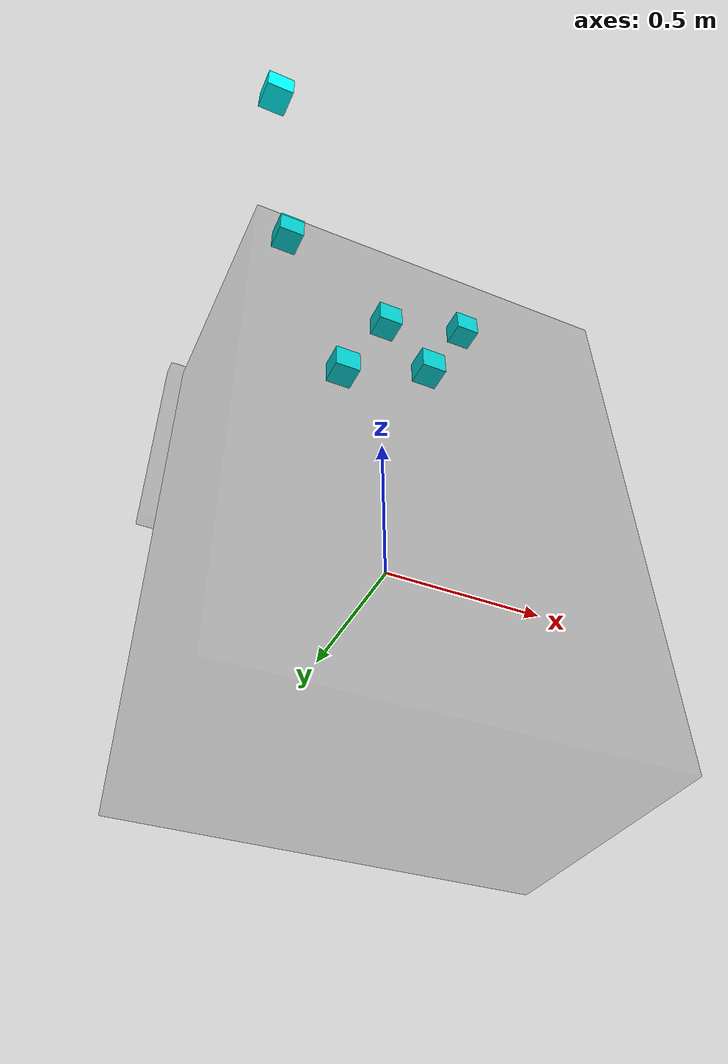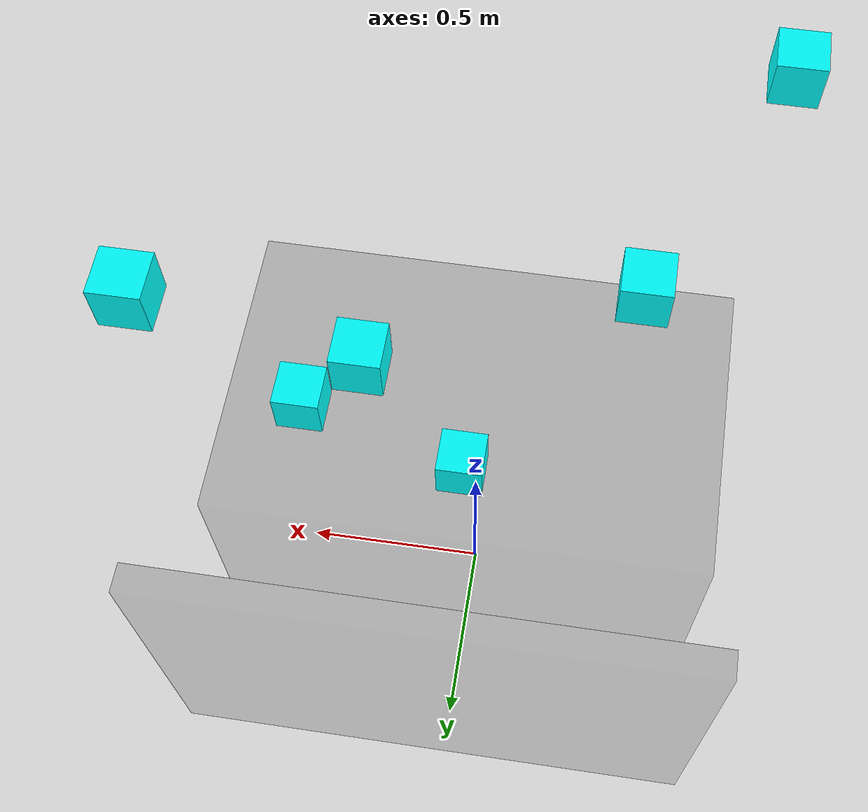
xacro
<?xml version="1.0"?>
<robot name="Test_Bench" xmlns:xacro="http://www.ros.org/wiki/xacro">

    <xacro:include filename="test_bench_core.xacro"/>
    <xacro:include filename="FLIR.xacro"/>
    <xacro:include filename="LIDAR.xacro"/>
    <xacro:include filename="REALSENSE.xacro"/>
    <xacro:include filename="MARVELMIND.xacro"/>
    <xacro:include filename="BNO055.xacro"/>
    <xacro:include filename="GPS.xacro"/>

</robot>

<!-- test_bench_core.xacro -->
<robot xmlns:xacro="http://www.ros.org/wiki/xacro">

    <!-- Test Bench Properties, Values in Meters-->
    <xacro:property name="bench_width" value="1.198"/>
    <xacro:property name="bench_depth" value=".7"/>
    <xacro:property name="bench_base_height" value=".804"/>
    <xacro:property name="bench_wall_height" value=".808"/>
    <xacro:property name="bench_wall_depth" value=".063"/>

    <xacro:property name="wheel_radius" value="0.0625"/>
    <xacro:property name="wheel_offset" value=".031"/>

    <!-- Base Link, this is our origin point for all test bench joints-->
    <link name="base_link">

    </link>

    <!-- Bench Footprint-->
    <link name="bench_footprint" type="fixed">
        <visual>
            <geometry>
                <box size="${bench_width} ${(bench_depth + bench_wall_depth)} ${(bench_base_height+bench_wall_height)}"/>
            </geometry>
            <material name="Grey">
                <color rgba=".1 .1 .1 .1"/>
            </material>
        </visual>
    </link>
    <link name="bench_wall" type="fixed">
        <visual>
            <geometry>
                <box size="${bench_width} ${bench_wall_depth} ${bench_wall_height}"/>
            </geometry>
            <material name="Grey">
                <color rgba=".1 .1 .1 .1"/>
            </material>
        </visual>
    </link>
    <joint name="bench_joint" type="fixed">
        <parent link="base_link"/>
        <child link="bench_footprint"/>
        <origin xyz="0.0 0.0 ${(wheel_radius*2+wheel_offset)}" rpy="0 0 0"/>
    </joint>
    <joint name="wall_joint" type="fixed">
        <parent link="bench_footprint"/>
        <child link="bench_wall"/>
        <origin xyz="0.0 ${(bench_depth+(bench_wall_depth/2))} ${bench_base_height}" rpy="0 0 0"/>
    </joint>
    <link name="zero_point" type="fixed">
    </link>
        <joint name="zero_joint" type="fixed">
        <parent link="bench_footprint"/>
        <child link="zero_point"/>
        <origin xyz="${(-bench_width/2)} ${(-(bench_depth + bench_wall_depth)/2)} ${bench_base_height}" rpy="0 0 0"/>
    </joint>

</robot>

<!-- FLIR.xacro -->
<robot xmlns:xacro="http://www.ros.org/wiki/xacro">

    <xacro:property name="FLIR_dims" value="0.1 0.1 0.1"/>
    <xacro:property name="FLIR_xyz" value=".938 0.63 .34"/>
    <xacro:property name="FLIR_rot" value="0.0 0.0 0.0"/>

    <!-- FLIR Link-->
    <link name="FLIR" type="fixed">
        <visual>
            <geometry>
                <box size="${FLIR_dims}"/>
            </geometry>
            <material name="Cyan">
                <color rgba="0 1.0 1.0 1.0"/>
            </material>
        </visual>
    </link>
    <joint name="FLIR_joint" type="fixed">
        <parent link="zero_point"/>
        <child link="FLIR"/>
        <origin xyz="${FLIR_xyz}" rpy="${FLIR_rot}"/>
    </joint>
</robot>

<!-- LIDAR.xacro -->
<robot xmlns:xacro="http://www.ros.org/wiki/xacro">

    <xacro:property name="LIDAR_dims" value="0.1 0.1 0.1"/>
    <xacro:property name="LIDAR_xyz" value="0.26 0.495 0.69"/>
    <xacro:property name="LIDAR_rot" value="0.0 0.0 0.0"/>

    <!-- LIDAR Link-->
    <link name="LIDAR" type="fixed">
        <visual>
            <geometry>
                <box size="${LIDAR_dims}"/>
            </geometry>
            <material name="Cyan">
                <color rgba="0 1.0 1.0 1.0"/>
            </material>
        </visual>
    </link>
    <joint name="LIDAR_joint" type="fixed">
        <parent link="zero_point"/>
        <child link="LIDAR"/>
        <origin xyz="${LIDAR_xyz}" rpy="${LIDAR_rot}"/>
    </joint>
</robot>

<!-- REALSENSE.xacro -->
<robot xmlns:xacro="http://www.ros.org/wiki/xacro">

    <xacro:property name="RS_dims" value="0.1 0.1 0.1"/>
    <xacro:property name="RS_xyz" value=".780 .68 .615"/>
    <xacro:property name="RS_rot" value="0.0 0.0 0.0"/>

    <!-- RS Link-->
    <link name="RS" type="fixed">
        <visual>
            <geometry>
                <box size="${RS_dims}"/>
            </geometry>
            <material name="Cyan">
                <color rgba="0 1.0 1.0 1.0"/>
            </material>
        </visual>
    </link>
    <joint name="RS_joint" type="fixed">
        <parent link="zero_point"/>
        <child link="RS"/>
        <origin xyz="${RS_xyz}" rpy="${RS_rot}"/>
    </joint>

    <!-- RS Camera Link-->
    <link name="camera_link" type="fixed">
    </link>
    <joint name="camera_joint" type="fixed">
        <parent link="RS"/>
        <child link="camera_link"/>
    </joint>

</robot>

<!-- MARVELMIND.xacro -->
<robot xmlns:xacro="http://www.ros.org/wiki/xacro">

    <xacro:property name="MM_dims" value="0.1 0.1 0.1"/>
    <xacro:property name="MM_xyz" value="1.18 .72 .808"/>
    <xacro:property name="MM_rot" value="0.0 0.0 0.0"/>

    <!-- MM Link-->
    <link name="MM" type="fixed">
        <visual>
            <geometry>
                <box size="${MM_dims}"/>
            </geometry>
            <material name="Cyan">
                <color rgba="0 1.0 1.0 1.0"/>
            </material>
        </visual>
    </link>
    <joint name="MM_joint" type="fixed">
        <parent link="zero_point"/>
        <child link="MM"/>
        <origin xyz="${MM_xyz}" rpy="${MM_rot}"/>
    </joint>

</robot>

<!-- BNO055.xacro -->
<robot xmlns:xacro="http://www.ros.org/wiki/xacro">

    <xacro:property name="BNO_dims" value="0.1 0.1 0.1"/>
    <xacro:property name="BNO_xyz" value="0.587 0.68 .232"/>
    <xacro:property name="BNO_rot" value="0.0 0.0 0.0"/>

    <!-- BNO Link-->
    <link name="BNO" type="fixed">
        <visual>
            <geometry>
                <box size="${BNO_dims}"/>
            </geometry>
            <material name="Cyan">
                <color rgba="0 1.0 1.0 1.0"/>
            </material>
        </visual>
    </link>
    <joint name="BNO_joint" type="fixed">
        <parent link="zero_point"/>
        <child link="BNO"/>
        <origin xyz="${BNO_xyz}" rpy="${BNO_rot}"/>
    </joint>

</robot>

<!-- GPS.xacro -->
<robot xmlns:xacro="http://www.ros.org/wiki/xacro">

    <xacro:property name="GPS_dims" value="0.1 0.1 0.1"/>
    <xacro:property name="GPS_xyz" value=".02 .02 .808"/>
    <xacro:property name="GPS_rot" value="0.0 0.0 0.0"/>

    <!-- GPS Link-->
    <link name="GPS" type="fixed">
        <visual>
            <geometry>
                <box size="${GPS_dims}"/>
            </geometry>
            <material name="Cyan">
                <color rgba="0 1.0 1.0 1.0"/>
            </material>
        </visual>
    </link>
    <joint name="GPS_joint" type="fixed">
        <parent link="zero_point"/>
        <child link="GPS"/>
        <origin xyz="${GPS_xyz}" rpy="${GPS_rot}"/>
    </joint>

</robot>
